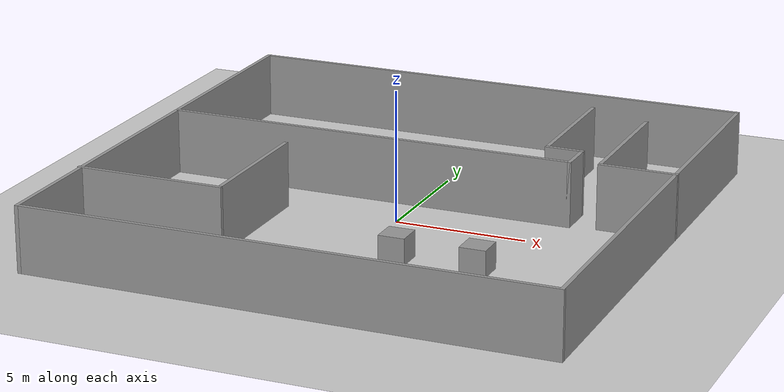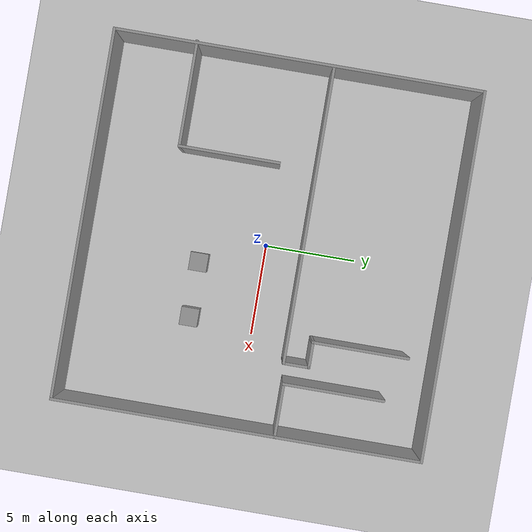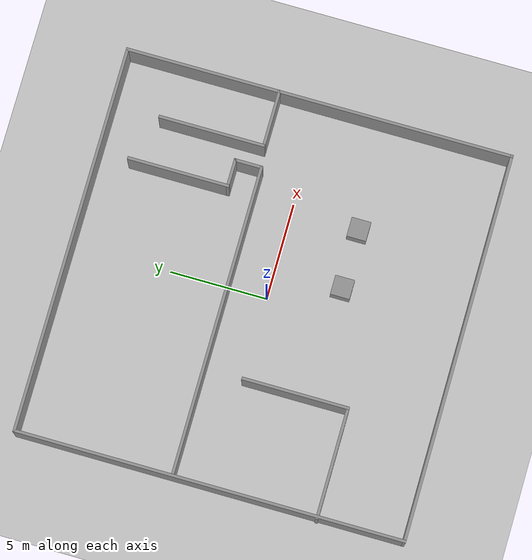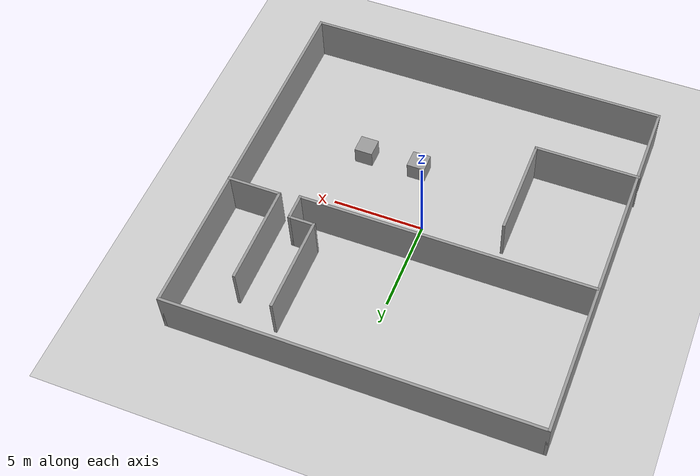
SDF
<sdf version="1.7">
 <world name="maze_world">
  <light name="sun" type="directional">
   <pose>0 0 10 0 -0 0</pose>
   <diffuse>0.8 0.8 0.8 1</diffuse>
   <specular>0.2 0.2 0.2 1</specular>
   <attenuation>
    <range>1000</range>
    <constant>0.9</constant>
    <linear>0.01</linear>
    <quadratic>0.001</quadratic>
   </attenuation>
   <direction>-0.5 0.1 -0.9</direction>
   <spot><inner_angle>0</inner_angle><outer_angle>0</outer_angle><falloff>0</falloff></spot>
  </light>
  <model name="ground_plane">
   <static>1</static>
   <link name="link">
    <collision name="collision">
     <geometry><plane><normal>0 0 1</normal><size>100 100</size></plane></geometry>
     <surface><friction><ode><mu>100</mu><mu2>50</mu2></ode></friction></surface>
    </collision>
    <visual name="visual">
     <cast_shadows>0</cast_shadows>
     <geometry><plane><normal>0 0 1</normal><size>100 100</size></plane></geometry>
     <material>
      <script><uri>file://media/materials/scripts/gazebo.material</uri><name>Gazebo/Grey</name></script>
     </material>
    </visual>
   </link>
  </model>
  <model name="maze">
   <pose>-0.078283 0.098984 0 0 -0 0</pose>
   <link name="Wall_0">
    <collision name="Wall_0_Collision">
     <geometry><box><size>20 0.15 2.5</size></box></geometry>
     <pose>0 0 1.25 0 -0 0</pose>
    </collision>
    <visual name="Wall_0_Visual">
     <pose>0 0 1.25 0 -0 0</pose>
     <geometry><box><size>20 0.15 2.5</size></box></geometry>
     <material>
      <script><uri>file://media/materials/scripts/gazebo.material</uri><name>Gazebo/Grey</name></script>
      <ambient>1 1 1 1</ambient>
     </material>
    </visual>
    <pose>0.030536 9.925 0 0 -0 0</pose>
   </link>
   <link name="Wall_1">
    <collision name="Wall_1_Collision">
     <geometry><box><size>20 0.15 2.5</size></box></geometry>
     <pose>0 0 1.25 0 -0 0</pose>
    </collision>
    <visual name="Wall_1_Visual">
     <pose>0 0 1.25 0 -0 0</pose>
     <geometry><box><size>20 0.15 2.5</size></box></geometry>
     <material>
      <script><uri>file://media/materials/scripts/gazebo.material</uri><name>Gazebo/Grey</name></script>
      <ambient>1 1 1 1</ambient>
     </material>
    </visual>
    <pose>9.95554 0 0 0 0 -1.5708</pose>
   </link>
   <link name="Wall_2">
    <collision name="Wall_2_Collision">
     <geometry><box><size>20 0.15 2.5</size></box></geometry>
     <pose>0 0 1.25 0 -0 0</pose>
    </collision>
    <visual name="Wall_2_Visual">
     <pose>0 0 1.25 0 -0 0</pose>
     <geometry><box><size>20 0.15 2.5</size></box></geometry>
     <material>
      <script><uri>file://media/materials/scripts/gazebo.material</uri><name>Gazebo/Grey</name></script>
      <ambient>1 1 1 1</ambient>
     </material>
    </visual>
    <pose>0.030536 -9.925 0 0 -0 3.14159</pose>
   </link>
   <link name="Wall_24">
    <collision name="Wall_24_Collision">
     <geometry><box><size>1.5 0.15 2.5</size></box></geometry>
     <pose>0 0 1.25 0 -0 0</pose>
    </collision>
    <visual name="Wall_24_Visual">
     <pose>0 0 1.25 0 -0 0</pose>
     <geometry><box><size>1.5 0.15 2.5</size></box></geometry>
     <material>
      <script><uri>file://media/materials/scripts/gazebo.material</uri><name>Gazebo/Grey</name></script>
      <ambient>1 1 1 1</ambient>
     </material>
    </visual>
    <pose>5.35089 3.21906 0 0 -0 3.14159</pose>
   </link>
   <link name="Wall_25">
    <collision name="Wall_25_Collision">
     <geometry><box><size>5.25 0.15 2.5</size></box></geometry>
     <pose>0 0 1.25 0 -0 0</pose>
    </collision>
    <visual name="Wall_25_Visual">
     <pose>0 0 1.25 0 -0 0</pose>
     <geometry><box><size>5.25 0.15 2.5</size></box></geometry>
     <material>
      <script><uri>file://media/materials/scripts/gazebo.material</uri><name>Gazebo/Grey</name></script>
      <ambient>1 1 1 1</ambient>
     </material>
    </visual>
    <pose>4.67589 5.76906 0 0 -0 1.5708</pose>
   </link>
   <link name="Wall_27">
    <collision name="Wall_27_Collision">
     <geometry><box><size>5.5 0.15 2.5</size></box></geometry>
     <pose>0 0 1.25 0 -0 0</pose>
    </collision>
    <visual name="Wall_27_Visual">
     <pose>0 0 1.25 0 -0 0</pose>
     <geometry><box><size>5.5 0.15 2.5</size></box></geometry>
     <material>
      <script><uri>file://media/materials/scripts/gazebo.material</uri><name>Gazebo/Grey</name></script>
      <ambient>1 1 1 1</ambient>
     </material>
    </visual>
    <pose>7.10914 4.73454 0 0 0 -1.5708</pose>
   </link>
   <link name="Wall_28">
    <collision name="Wall_28_Collision">
     <geometry><box><size>3 0.15 2.5</size></box></geometry>
     <pose>0 0 1.25 0 -0 0</pose>
    </collision>
    <visual name="Wall_28_Visual">
     <pose>0 0 1.25 0 -0 0</pose>
     <geometry><box><size>3 0.15 2.5</size></box></geometry>
     <material>
      <script><uri>file://media/materials/scripts/gazebo.material</uri><name>Gazebo/Grey</name></script>
      <ambient>1 1 1 1</ambient>
     </material>
    </visual>
    <pose>8.53414 2.05954 0 0 -0 0</pose>
   </link>
   <link name="Wall_3">
    <collision name="Wall_3_Collision">
     <geometry><box><size>20 0.15 2.5</size></box></geometry>
     <pose>0 0 1.25 0 -0 0</pose>
    </collision>
    <visual name="Wall_3_Visual">
     <pose>0 0 1.25 0 -0 0</pose>
     <geometry><box><size>20 0.15 2.5</size></box></geometry>
     <material>
      <script><uri>file://media/materials/scripts/gazebo.material</uri><name>Gazebo/Grey</name></script>
      <ambient>1 1 1 1</ambient>
     </material>
    </visual>
    <pose>-9.89446 0 0 0 -0 1.5708</pose>
   </link>
   <link name="Wall_30">
    <collision name="Wall_30_Collision">
     <geometry><box><size>5.5 0.15 2.5</size></box></geometry>
     <pose>0 0 1.25 0 -0 0</pose>
    </collision>
    <visual name="Wall_30_Visual">
     <pose>0 0 1.25 0 -0 0</pose>
     <geometry><box><size>5.5 0.15 2.5</size></box></geometry>
     <material>
      <script><uri>file://media/materials/scripts/gazebo.material</uri><name>Gazebo/Grey</name></script>
      <ambient>1 1 1 1</ambient>
     </material>
    </visual>
    <pose>-4.35914 -2.82889 0 0 0 -1.5708</pose>
   </link>
   <link name="Wall_31">
    <collision name="Wall_31_Collision">
     <geometry><box><size>5.75 0.15 2.5</size></box></geometry>
     <pose>0 0 1.25 0 -0 0</pose>
    </collision>
    <visual name="Wall_31_Visual">
     <pose>0 0 1.25 0 -0 0</pose>
     <geometry><box><size>5.75 0.15 2.5</size></box></geometry>
     <material>
      <script><uri>file://media/materials/scripts/gazebo.material</uri><name>Gazebo/Grey</name></script>
      <ambient>1 1 1 1</ambient>
     </material>
    </visual>
    <pose>-7.15914 -5.50389 0 0 -0 3.14159</pose>
   </link>
   <link name="Wall_5">
    <collision name="Wall_5_Collision">
     <geometry><box><size>16 0.15 2.5</size></box></geometry>
     <pose>0 0 1.25 0 -0 0</pose>
    </collision>
    <visual name="Wall_5_Visual">
     <pose>0 0 1.25 0 -0 0</pose>
     <geometry><box><size>16 0.15 2.5</size></box></geometry>
     <material>
      <script><uri>file://media/materials/scripts/gazebo.material</uri><name>Gazebo/Grey</name></script>
      <ambient>1 1 1 1</ambient>
     </material>
    </visual>
    <pose>-1.89911 1.86906 0 0 -0 0</pose>
   </link>
   <link name="Wall_6">
    <collision name="Wall_6_Collision">
     <geometry><box><size>1.5 0.15 2.5</size></box></geometry>
     <pose>0 0 1.25 0 -0 0</pose>
    </collision>
    <visual name="Wall_6_Visual">
     <pose>0 0 1.25 0 -0 0</pose>
     <geometry><box><size>1.5 0.15 2.5</size></box></geometry>
     <material>
      <script><uri>file://media/materials/scripts/gazebo.material</uri><name>Gazebo/Grey</name></script>
      <ambient>1 1 1 1</ambient>
     </material>
    </visual>
    <pose>6.02589 2.54406 0 0 -0 1.5708</pose>
   </link>
   <link name="Wall_8">
    <collision name="Wall_8_Collision">
     <geometry><box><size>0.15 0.15 2.5</size></box></geometry>
     <pose>0 0 1.25 0 -0 0</pose>
    </collision>
    <visual name="Wall_8_Visual">
     <pose>0 0 1.25 0 -0 0</pose>
     <geometry><box><size>0.15 0.15 2.5</size></box></geometry>
     <material>
      <script><uri>file://media/materials/scripts/gazebo.material</uri><name>Gazebo/Grey</name></script>
      <ambient>1 1 1 1</ambient>
     </material>
    </visual>
    <pose>6.02589 3.21906 0 0 -0 0</pose>
   </link>
   <static>1</static>
  </model>
  <gravity>0 0 -9.8</gravity>
  <magnetic_field>6e-06 2.3e-05 -4.2e-05</magnetic_field>
  <atmosphere type="adiabatic"/>
  <physics type="ode">
   <max_step_size>0.001</max_step_size>
   <real_time_factor>1</real_time_factor>
   <real_time_update_rate>1000</real_time_update_rate>
  </physics>
  <scene><ambient>0.4 0.4 0.4 1</ambient><background>0.7 0.7 0.7 1</background><shadows>1</shadows></scene>
  <audio><device>default</device></audio>
  <spherical_coordinates>
   <surface_model>EARTH_WGS84</surface_model>
   <latitude_deg>0</latitude_deg>
   <longitude_deg>0</longitude_deg>
   <elevation>0</elevation>
   <heading_deg>0</heading_deg>
  </spherical_coordinates>
  <model name="unit_box">
   <pose>4.52949 -3.48634 0.5 0 -0 0</pose>
   <link name="link">
    <inertial>
     <mass>1</mass>
     <inertia>
      <ixx>0.166667</ixx>
      <ixy>0</ixy>
      <ixz>0</ixz>
      <iyy>0.166667</iyy>
      <iyz>0</iyz>
      <izz>0.166667</izz>
     </inertia>
    </inertial>
    <collision name="collision"><geometry><box><size>1 1 1</size></box></geometry></collision>
    <visual name="visual">
     <geometry><box><size>1 1 1</size></box></geometry>
     <material>
      <script><name>Gazebo/Grey</name><uri>file://media/materials/scripts/gazebo.material</uri></script>
     </material>
    </visual>
   </link>
  </model>
  <model name="unit_box_0">
   <pose>1.48917 -3.49156 0.5 -0 -0 -0</pose>
   <link name="link">
    <inertial>
     <mass>1</mass>
     <inertia>
      <ixx>0.166667</ixx>
      <ixy>0</ixy>
      <ixz>0</ixz>
      <iyy>0.166667</iyy>
      <iyz>0</iyz>
      <izz>0.166667</izz>
     </inertia>
    </inertial>
    <collision name="collision"><geometry><box><size>1 1 1</size></box></geometry></collision>
    <visual name="visual">
     <geometry><box><size>1 1 1</size></box></geometry>
     <material>
      <script><name>Gazebo/Grey</name><uri>file://media/materials/scripts/gazebo.material</uri></script>
     </material>
    </visual>
   </link>
  </model>
 </world>
</sdf>
